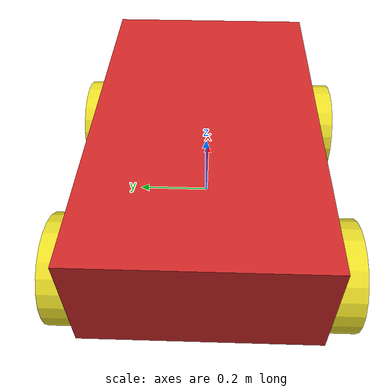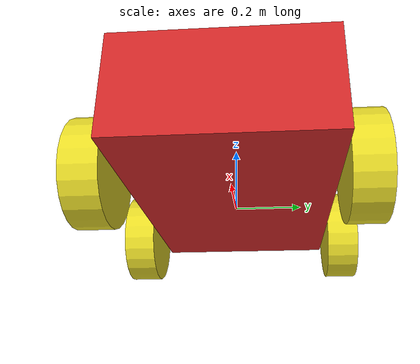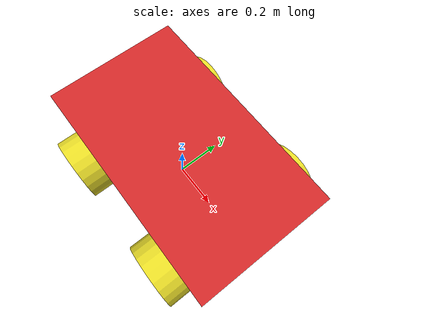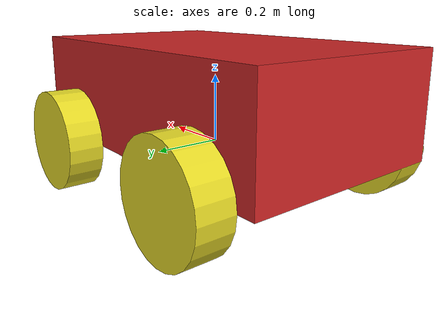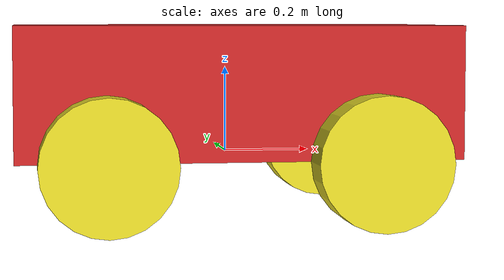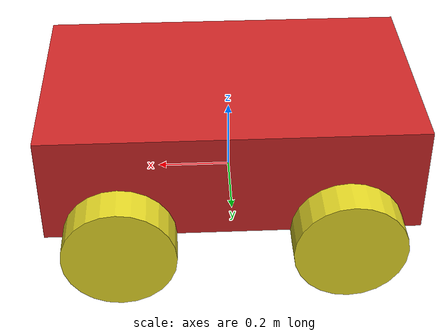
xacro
<?xml version="1.0"?>
<!-- Basic 4-Wheel robot -->
<robot name='differential_drive_robot' xmlns:xacro='http://www.ros.org/wiki/xacro'>

<!-- Body Dimensions -->
<xacro:property name='body_link_x_dim' value='1'/>
<xacro:property name='body_link_y_dim' value='0.6'/>
<xacro:property name='body_link_z_dim' value='0.3'/>

<!-- Wheels Dimensions -->
<xacro:property name='wheel_link_radius' value='0.15'/>
<xacro:property name='wheel_link_length' value='0.1'/>
<xacro:property name='wheel_length_z_location' value='0.1'/>

<!-- Material Density -->
<xacro:property name='body_density' value='2710.0'/>
<xacro:property name='wheel_density' value='2710.0'/>

<!-- Pi constant-->
<xacro:property name='pi_const' value='3.14159'/>

<!-- Robot body and wheel mass -->
<xacro:property name='body_mass' value='${body_density * body_link_x_dim * body_link_y_dim * body_link_z_dim}'/>
<xacro:property name='wheel_mass' value='${wheel_density * pi_const * wheel_link_radius * wheel_link_radius * wheel_link_length}'/>

<!-- Moments of inertia of the wheel -->
<xacro:property name='Iz_wheel' value='${0.5 * wheel_mass * wheel_link_radius * wheel_link_radius}'/>
<xacro:property name='I_wheel' value='${(1/12) * wheel_mass * (3 * wheel_link_radius * wheel_link_radius + wheel_link_length * wheel_link_length)}'/>

<!-- This macro defines the complete inertial section of the wheel -->
<!-- It is used later in the code -->
<xacro:macro name='inertia_wheel'>
    <inertial>
        <origin xyz='0 0 0' rpy='0 0 0'/>
        <mass value='${wheel_mass}'/>
        <inertia
        ixx='${I_wheel}' ixy='0' ixz='0'
        iyy='${I_wheel}' iyz='0'
        izz='${Iz_wheel}'/>
    </inertial>
</xacro:macro>

<!-- File that defines extra Gazebo options and the control driver -->
<!-- Use a relative include so it works from both source and installed share paths -->
<xacro:include filename='robot.gazebo'/>

<!-- Body Link -->
<link name='body_link'>
    <visual>
        <geometry>
            <box size='${body_link_x_dim} ${body_link_y_dim} ${body_link_z_dim}'/>
        </geometry>
    <origin xyz='0 0 0.15' rpy='0 0 0'/>
    </visual>

    <collision>
        <geometry>
            <box size='${body_link_x_dim} ${body_link_y_dim} ${body_link_z_dim}'/>
        </geometry>
        <origin xyz='0 0 0' rpy='0 0 0'/>
    </collision>

    <inertial>
        <origin xyz='0 0 0' rpy='0 0 0'/>
        <mass value='${body_mass}'/>
        <inertia
        ixx='${(1/12) * body_mass * (body_link_y_dim * body_link_y_dim + body_link_z_dim * body_link_z_dim)}' ixy='0' ixz='0'
        iyy='${(1/12) * body_mass * (body_link_x_dim * body_link_x_dim + body_link_z_dim * body_link_z_dim)}' iyz='0'
        izz='${(1/12) * body_mass * (body_link_x_dim * body_link_x_dim + body_link_y_dim * body_link_y_dim)}'/>
    </inertial>
</link>

<!-- End of body link -->

<link name='dummy'>
</link>
<joint name='dummy_joint' type='fixed'>
    <parent link='dummy'/>
    <child link='body_link'/>
</joint>

<!-- back right wheel of robot and joint -->
<joint name='wheel1_joint' type='continuous'>
    <parent link='body_link'/>
    <child link='wheel1_link'/>
    <origin xyz='-0.3 -0.35 0' rpy = '0 0 0'/>
    <axis xyz='0 1 0'/>
    <limit effort='1000' velocity='1000'/>
    <dynamics damping='1.0' friction='1.0'/>
</joint>

<link name='wheel1_link'>
    <visual>
        <origin rpy='1.570795 0 0' xyz='0 0 0'/>
        <geometry>
            <cylinder length='${wheel_link_length}' radius='${wheel_link_radius}'/>
        </geometry>
    </visual>

    <collision>
        <origin rpy='1.570795 0 0' xyz='0 0 0'/>
        <geometry>
            <cylinder length='${wheel_link_length}' radius='${wheel_link_radius}'/>
        </geometry>
    </collision>

    <xacro:inertia_wheel/>
</link>

<!-- end of back right wheel -->

<!-- back left wheel of the robot and the joint -->

<joint name='wheel2_joint' type='continuous'>
    <parent link='body_link'/>
    <child link='wheel2_link'/>
    <origin xyz='-0.3 0.35 0' rpy = '0 0 0'/>
    <axis xyz='0 1 0'/>
    <limit effort='1000' velocity='1000'/>
    <dynamics damping='1.0' friction='1.0'/>
</joint>

<link name='wheel2_link'>
    <visual>
        <origin rpy='1.570795 0 0' xyz='0 0 0'/>
        <geometry>
            <cylinder length='${wheel_link_length}' radius='${wheel_link_radius}'/>
        </geometry>
    </visual>

    <collision>
        <origin rpy='1.570795 0 0' xyz='0 0 0'/>
        <geometry>
            <cylinder length='${wheel_link_length}' radius='${wheel_link_radius}'/>
        </geometry>
    </collision>

    <xacro:inertia_wheel/>
</link>

<!-- end of back left wheel -->

<!-- Front right wheel of robot and joint -->
<joint name='wheel3_joint' type='continuous'>
    <parent link='body_link'/>
    <child link='wheel3_link'/>
    <origin xyz='0.3 -0.35 0' rpy = '0 0 0'/>
    <axis xyz='0 1 0'/>
    <limit effort='1000' velocity='1000'/>
    <dynamics damping='1.0' friction='1.0'/>
</joint>

<link name='wheel3_link'>
    <visual>
        <origin rpy='1.570795 0 0' xyz='0 0 0'/>
        <geometry>
            <cylinder length='${wheel_link_length}' radius='${wheel_link_radius}'/>
        </geometry>
    </visual>

    <collision>
        <origin rpy='1.570795 0 0' xyz='0 0 0'/>
        <geometry>
            <cylinder length='${wheel_link_length}' radius='${wheel_link_radius}'/>
        </geometry>
    </collision>

    <xacro:inertia_wheel/>
</link>

<!-- end of front right wheel -->

<!-- front left wheel of the robot and the joint -->
<joint name='wheel4_joint' type='continuous'>
    <parent link='body_link'/>
    <child link='wheel4_link'/>
    <origin xyz='0.3 0.35 0' rpy = '0 0 0'/>
    <axis xyz='0 1 0'/>
    <limit effort='1000' velocity='1000'/>
    <dynamics damping='1.0' friction='1.0'/>
</joint>

<link name='wheel4_link'>
    <visual>
        <origin rpy='1.570795 0 0' xyz='0 0 0'/>
        <geometry>
            <cylinder length='${wheel_link_length}' radius='${wheel_link_radius}'/>
        </geometry>
    </visual>

    <collision>
        <origin rpy='1.570795 0 0' xyz='0 0 0'/>
        <geometry>
            <cylinder length='${wheel_link_length}' radius='${wheel_link_radius}'/>
        </geometry>
    </collision>
    <xacro:inertia_wheel/>
</link>

<!-- end of front left wheel -->
</robot>
